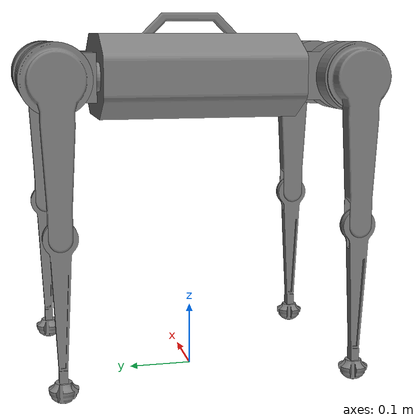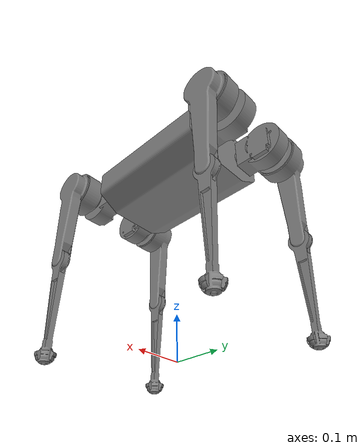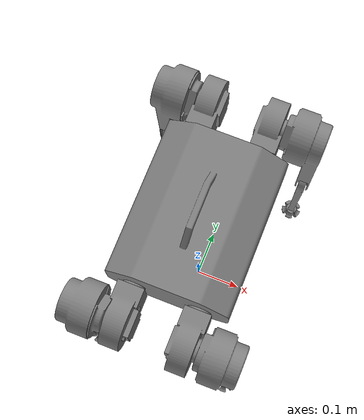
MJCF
<mujoco model="sparky">
  <compiler angle="radian" meshdir="meshes/" autolimits="true"/>
   <option cone="elliptic" impratio="100"/>
  <default>
    <default class="sparky">
      <geom friction="0.6" margin="0.001"/>
      <joint axis="0 1 0" damping="2" armature="0.01" frictionloss="0.2"/>
      <position kp="80" forcerange="-25 25"/>
      <default class="abductor">
        <joint axis="1 0 0" damping="1" range="-1 1"/>
        <position ctrlrange="-1.57 1.57"/>
      </default>
      <default class="hip">
        <joint range="-1.57 1.57"/>
        <position ctrlrange="-1.57 1.57"/>
      </default>
      <default class="knee">
        <joint range="-1.57 1.57"/>
        <position ctrlrange="-3 3"/>
      </default>
    </default>
  </default>

  <asset>
    <mesh name="base_link" file="base_link.stl" scale="0.001 0.001 0.001"/>
    <mesh name="front_right_abductor1" file="front_right_abductor1.stl" scale="0.001 0.001 0.001"/>
    <mesh name="front_left_abductor1" file="front_left_abductor1.stl" scale="0.001 0.001 0.001"/>
    <mesh name="back_right_abductor1" file="back_right_abductor1.stl" scale="0.001 0.001 0.001"/>
    <mesh name="back_left_abductor1" file="back_left_abductor1.stl" scale="0.001 0.001 0.001"/>
    <mesh name="front_right_upper_leg1" file="front_right_upper_leg1.stl" scale="0.001 0.001 0.001"/>
    <mesh name="back_left_upper_leg1" file="back_left_upper_leg1.stl" scale="0.001 0.001 0.001"/>
    <mesh name="front_left_upper_leg1" file="front_left_upper_leg1.stl" scale="0.001 0.001 0.001"/>
    <mesh name="back_right_upper_leg1" file="back_right_upper_leg1.stl" scale="0.001 0.001 0.001"/>
    <mesh name="front_right_lower_leg1" file="front_right_lower_leg1.stl" scale="0.001 0.001 0.001"/>
    <mesh name="back_right_lower_leg1" file="back_right_lower_leg1.stl" scale="0.001 0.001 0.001"/>
    <mesh name="front_left_lower_leg1" file="front_left_lower_leg1.stl" scale="0.001 0.001 0.001"/>
    <mesh name="back_left_lower_leg1" file="back_left_lower_leg1.stl" scale="0.001 0.001 0.001"/>
  </asset>

  <worldbody>
    <body name="trunk" pos="0 0 0.01" quat= "1 1 0 0" childclass="sparky">
      <freejoint/>
      <geom type="mesh" contype="0" conaffinity="0" group="1" density="0" mass="0.75" mesh="base_link"/>
      <geom type="mesh" mesh="base_link"/>
      <body name="front_right_abductor1" pos="0.0635 0.467668 0.162569">
        <inertial pos="-0.00132483 -0.000708044 0.054912" quat="0.999741 0.011413 -0.00793461 -0.0180434" mass="0.445618" diaginertia="0.000684714 0.000488292 0.000363042" />
        <joint class="abductor" name="FL_abductor" pos="0 0 0" axis="0 0 1" damping = "1"/>
        <geom pos="-0.0635 -0.467668 -0.162569" type="mesh" contype="0" conaffinity="0" group="1" density="0" mesh="front_right_abductor1"/>
        <geom pos="-0.0635 -0.467668 -0.162569" type="mesh" mesh="front_right_abductor1"/>
        <body name="front_left_upper_leg1" pos="0.0254 0 0.0635">
          <inertial pos="0.0481477 -0.0298107 0.000192477" quat="0.700869 0.706971 0.043841 0.0839781" mass="0.744888" diaginertia="0.00310845 0.00304062 0.000635321"/>
          <joint class="hip" name="FL_hip" pos="0 0 0" axis="-1 0 0"/>
          <geom pos="-0.0889 -0.467668 -0.226069" type="mesh" contype="0" conaffinity="0" group="1" density="0" mesh="front_left_upper_leg1"/>
          <geom pos="-0.0889 -0.467668 -0.226069" type="mesh" mesh="front_left_upper_leg1"/>
          <body name="front_left_lower_leg1" pos="0.068262 -0.22225 0">
            <inertial pos="-0.000610027 -0.100884 3.1979e-07" quat="0.707102 0.707102 -0.00255178 -0.00255178" mass="0.0866073" diaginertia="0.000811444 0.000805933 1.15493e-05"/>
            <joint class="knee" name="FL_knee" pos="0 0 0" axis="-1 0 0" />
            <geom pos="-0.157162 -0.245418 -0.226069" type="mesh" contype="0" conaffinity="0" group="1" density="0" mesh="front_left_lower_leg1"/>
            <geom pos="-0.157162 -0.245418 -0.226069" type="mesh" mesh="front_left_lower_leg1"/>
          </body>
        </body>
      </body>
      <body name="front_left_abductor1" pos="-0.0635 0.467668 0.162569">
        <inertial pos="0.00132483 -0.000708044 0.054912" quat="0.999741 0.011413 0.00793461 0.0180434" mass="0.445618" diaginertia="0.000684714 0.000488292 0.000363042"/>
        <joint class="abductor" name="FR_abductor" pos="0 0 0" axis="0 0 -1" damping = "1"/>
        <geom pos="0.0635 -0.467668 -0.162569" type="mesh" contype="0" conaffinity="0" group="1" density="0" mesh="front_left_abductor1"/>
        <geom pos="0.0635 -0.467668 -0.162569" type="mesh" mesh="front_left_abductor1"/>
        <body name="front_right_upper_leg1" pos="-0.0254 0 0.0635">
          <inertial pos="-0.0481477 -0.0298107 0.000192481" quat="0.700869 0.706971 -0.0438411 -0.083978" mass="0.744888" diaginertia="0.00310845 0.00304062 0.000635321"/>
          <joint class="hip" name="FR_hip" pos="0 0 0" axis="-1 0 0"/>
          <geom pos="0.0889 -0.467668 -0.226069" type="mesh" contype="0" conaffinity="0" group="1" density="0" mesh="front_right_upper_leg1"/>
          <geom pos="0.0889 -0.467668 -0.226069" type="mesh" mesh="front_right_upper_leg1"/>
          <body name="front_right_lower_leg1" pos="-0.068263 -0.22225 0">
            <inertial pos="0.00061119 -0.100883 2.61096e-07" quat="0.707102 0.707102 0.00255243 0.00255243" mass="0.086607" diaginertia="0.000811441 0.00080593 1.1549e-05"/>
            <joint class="knee" name="FR_knee" pos="0 0 0" axis="-1 0 0" />
            <geom pos="0.157163 -0.245418 -0.226069" type="mesh" contype="0" conaffinity="0" group="1" density="0" mesh="front_right_lower_leg1"/>
            <geom pos="0.157163 -0.245418 -0.226069" type="mesh" mesh="front_right_lower_leg1"/>
          </body>
        </body>
      </body>
      <body name="back_right_abductor1" pos="0.0635 0.467668 -0.158106">
        <inertial pos="-0.00132483 -0.000708044 -0.0549114" quat="0.999741 -0.011413 0.00793461 -0.0180434" mass="0.445618" diaginertia="0.000684714 0.000488292 0.000363042"/>
        <joint class="abductor" name="BL_abductor" pos="0 0 0" axis="0 0 1" damping = "1"/>
        <geom pos="-0.0635 -0.467668 0.158106" type="mesh" contype="0" conaffinity="0" group="1" density="0" mesh="back_right_abductor1"/>
        <geom pos="-0.0635 -0.467668 0.158106" type="mesh" mesh="back_right_abductor1"/>
        <body name="back_left_upper_leg1" pos="0.0254 0 -0.0635">
          <inertial pos="0.0481477 -0.0298107 -0.000191848" quat="0.706971 0.700869 0.083978 0.0438411" mass="0.744888" diaginertia="0.00310845 0.00304062 0.000635321"/>
          <joint class="hip" name="BL_hip" pos="0 0 0" axis="1 0 0"/>
          <geom pos="-0.0889 -0.467668 0.221606" type="mesh" contype="0" conaffinity="0" group="1" density="0" mesh="back_left_upper_leg1"/>
          <geom pos="-0.0889 -0.467668 0.221606" type="mesh" mesh="back_left_upper_leg1"/>
          <body name="back_left_lower_leg1" pos="0.068262 -0.22225 0">
            <inertial pos="-0.000610027 -0.100884 3.1979e-07" quat="0.707102 0.707102 -0.00255178 -0.00255178" mass="0.0866073" diaginertia="0.000811444 0.000805933 1.15493e-05"/>
            <joint class="knee" name="BL_knee" pos="0 0 0" axis="1 0 0" />
            <geom pos="-0.157162 -0.245418 0.221606" type="mesh" contype="0" conaffinity="0" group="1" density="0" mesh="back_left_lower_leg1"/>
            <geom pos="-0.157162 -0.245418 0.221606" type="mesh" mesh="back_left_lower_leg1"/>
          </body>
        </body>
      </body>
      <body name="back_left_abductor1" pos="-0.0635 0.467668 -0.158106">
        <inertial pos="0.00132483 -0.000708044 -0.0549114" quat="0.999741 -0.011413 -0.00793461 0.0180434" mass="0.445618" diaginertia="0.000684714 0.000488292 0.000363042"/>
        <joint class="abductor" name="BR_abductor" pos="0 0 0" axis="0 0 -1" damping = "1"/>
        <geom pos="0.0635 -0.467668 0.158106" type="mesh" contype="0" conaffinity="0" group="1" density="0" mesh="back_left_abductor1"/>
        <geom pos="0.0635 -0.467668 0.158106" type="mesh" mesh="back_left_abductor1"/>
        <body name="back_right_upper_leg1" pos="-0.0254 0 -0.0635">
          <inertial pos="-0.0481477 -0.0298107 -0.000191844" quat="0.706971 0.700869 -0.0839781 -0.043841" mass="0.744888" diaginertia="0.00310845 0.00304062 0.000635321"/>
          <joint class="hip" name="BR_hip" pos="0 0 0" axis="1 0 0"/>
          <geom pos="0.0889 -0.467668 0.221606" type="mesh" contype="0" conaffinity="0" group="1" density="0" mesh="back_right_upper_leg1"/>
          <geom pos="0.0889 -0.467668 0.221606" type="mesh" mesh="back_right_upper_leg1"/>
          <body name="back_right_lower_leg1" pos="-0.068263 -0.22225 0">
            <inertial pos="0.00061119 -0.100883 2.61096e-07" quat="0.707102 0.707102 0.00255243 0.00255243" mass="0.086607" diaginertia="0.000811441 0.00080593 1.1549e-05"/>
            <joint class="knee" name="BR_knee" pos="0 0 0" axis="1 0 0" />
            <geom pos="0.157163 -0.245418 0.221606" type="mesh" contype="0" conaffinity="0" group="1" density="0" mesh="back_right_lower_leg1"/>
            <geom pos="0.157163 -0.245418 0.221606" type="mesh" mesh="back_right_lower_leg1"/>
          </body>
        </body>
      </body>
    </body>
  </worldbody>

  <actuator>
    <position class="abductor" name="FL_abductor" joint="FL_abductor"/>
    <position class="hip" name="FL_hip" joint="FL_hip"/>
    <position class="knee" name="FL_knee" joint="FL_knee" gear="1.5"/>
    <position class="abductor" name="FR_abductor" joint="FR_abductor"/>
    <position class="hip" name="FR_hip" joint="FR_hip"/>
    <position class="knee" name="FR_knee" joint="FR_knee" gear="1.5"/>
    <position class="abductor" name="BL_abductor" joint="BL_abductor"/>
    <position class="hip" name="BL_hip" joint="BL_hip"/>
    <position class="knee" name="BL_knee" joint="BL_knee" gear="1.5"/>
    <position class="abductor" name="BR_abductor" joint="BR_abductor"/>
    <position class="hip" name="BR_hip" joint="BR_hip"/>
    <position class="knee" name="BR_knee" joint="BR_knee" gear="1.5"/>
  </actuator>

  <contact>
    <exclude body1="trunk" body2="front_left_upper_leg1"/>
    <exclude body1="trunk" body2="front_right_upper_leg1"/>
    <exclude body1="trunk" body2="back_left_upper_leg1"/>
    <exclude body1="trunk" body2="back_right_upper_leg1"/>
  </contact>

</mujoco>
